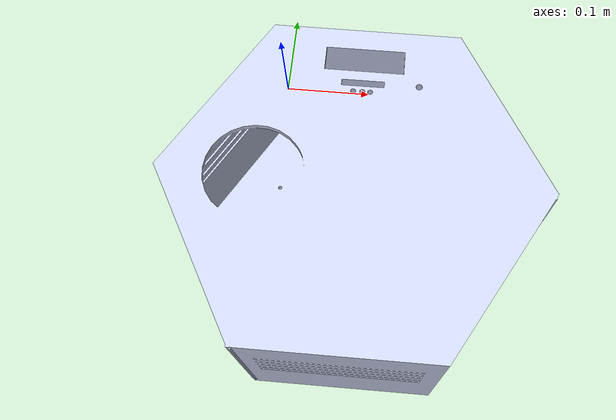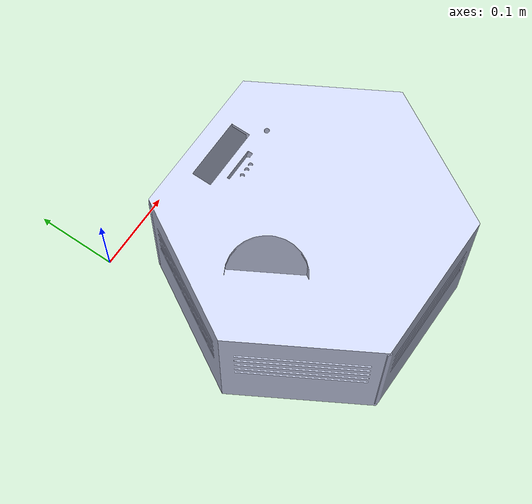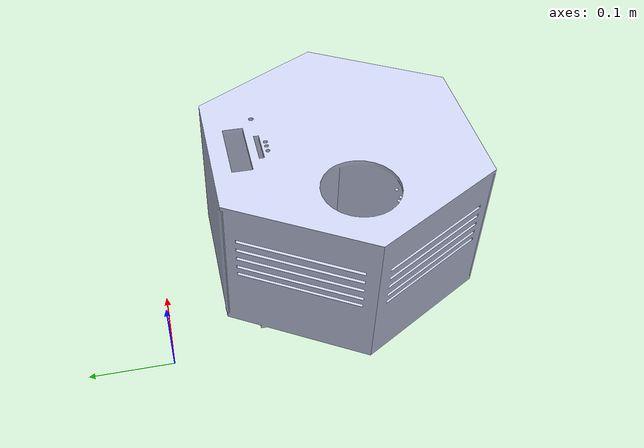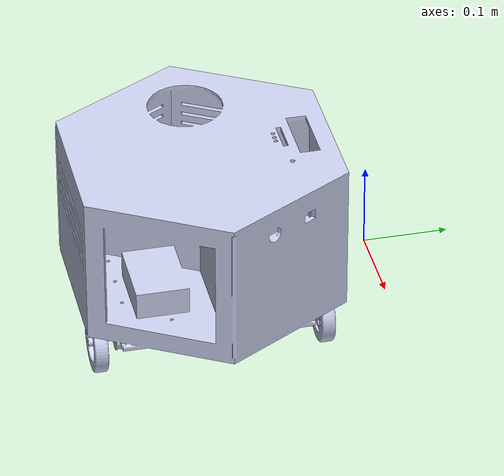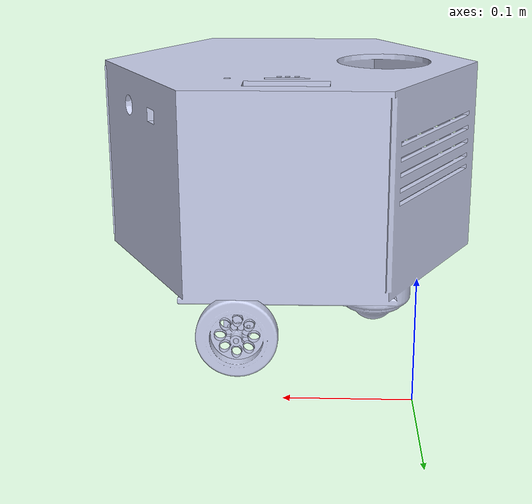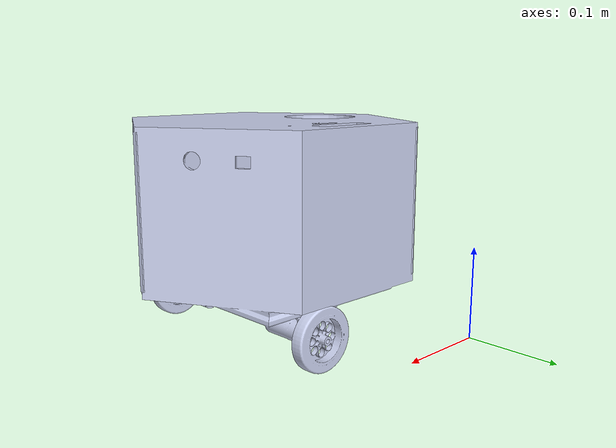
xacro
<?xml version="1.0" encoding="utf-8"?>
<robot
  name="myrobot_description">
  <link
    name="base_link">
    <inertial>
      <origin
        xyz="0.0930889531665849 0.114954679023823 0.213592123167538"
        rpy="0 0 0" />
      <mass
        value="2.4187019942906" />
      <inertia
        ixx="0.0097167538132348"
        ixy="1.82727203994774E-07"
        ixz="5.31083996344602E-07"
        iyy="0.0126422422196956"
        iyz="3.16519494315015E-07"
        izz="0.00864764224782448" />
    </inertial>
    <visual>
      <origin
        xyz="0 0 0"
        rpy="0 0 0" />
      <geometry>
        <mesh
          filename="package://myrobot_description/meshes/base_link.STL" />
      </geometry>
      <material
        name="">
        <color
          rgba="0.792156862745098 0.819607843137255 0.933333333333333 1" />
      </material>
    </visual>
    <collision>
      <origin
        xyz="0 0 0"
        rpy="0 0 0" />
      <geometry>
        <mesh
          filename="package://myrobot_description/meshes/base_link.STL" />
      </geometry>
    </collision>
  </link>
  <link
    name="left_Link">
    <inertial>
      <origin
        xyz="-1.11022302462516E-16 0.00731467256967719 9.54097911787244E-18"
        rpy="0 0 0" />
      <mass
        value="0.0370924956096524" />
      <inertia
        ixx="1.57256230043058E-05"
        ixy="-8.28048078686532E-20"
        ixz="1.05879118406677E-22"
        iyy="3.01227753803978E-05"
        iyz="-2.00954161708278E-21"
        izz="1.57256230043058E-05" />
    </inertial>
    <visual>
      <origin
        xyz="0 0 0"
        rpy="0 0 0" />
      <geometry>
        <mesh
          filename="package://myrobot_description/meshes/left_Link.STL" />
      </geometry>
      <material
        name="">
        <color
          rgba="0.792156862745098 0.819607843137255 0.933333333333333 1" />
      </material>
    </visual>
    <collision>
      <origin
        xyz="0 0 0"
        rpy="0 0 0" />
      <geometry>
        <mesh
          filename="package://myrobot_description/meshes/left_Link.STL" />
      </geometry>
    </collision>
  </link>
  <joint
    name="left_joint"
    type="fixed">
    <origin
      xyz="0.14232 -0.092107 0.013289"
      rpy="0 -0.038545 0" />
    <parent
      link="base_link" />
    <child
      link="left_Link" />
    <axis
      xyz="0 0 0" />
  </joint>
  <link
    name="right_Link">
    <inertial>
      <origin
        xyz="1.38777878078145E-17 0.00731467256967722 0"
        rpy="0 0 0" />
      <mass
        value="0.0370924956096531" />
      <inertia
        ixx="1.57256230043061E-05"
        ixy="-3.57225738231017E-19"
        ixz="1.77876918923419E-20"
        iyy="3.01227753803983E-05"
        iyz="1.62446679760193E-20"
        izz="1.57256230043061E-05" />
    </inertial>
    <visual>
      <origin
        xyz="0 0 0"
        rpy="0 0 0" />
      <geometry>
        <mesh
          filename="package://myrobot_description/meshes/right_Link.STL" />
      </geometry>
      <material
        name="">
        <color
          rgba="0.792156862745098 0.819607843137255 0.933333333333333 1" />
      </material>
    </visual>
    <collision>
      <origin
        xyz="0 0 0"
        rpy="0 0 0" />
      <geometry>
        <mesh
          filename="package://myrobot_description/meshes/right_Link.STL" />
      </geometry>
    </collision>
  </link>
  <joint
    name="right_Joint"
    type="fixed">
    <origin
      xyz="0.14232 -0.33711 0.013289"
      rpy="-3.1416 0.82878 0" />
    <parent
      link="base_link" />
    <child
      link="right_Link" />
    <axis
      xyz="0 0 0" />
  </joint>
</robot>
